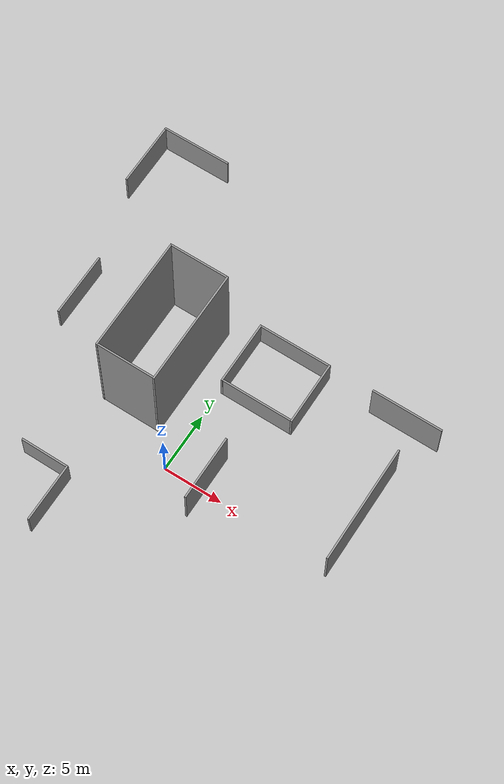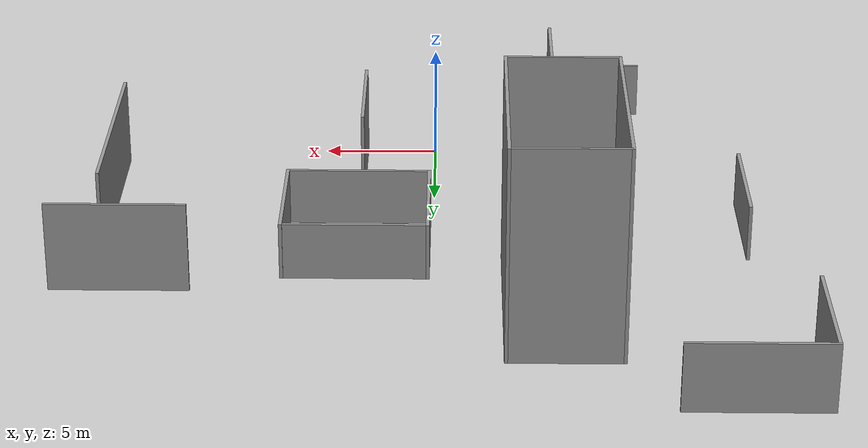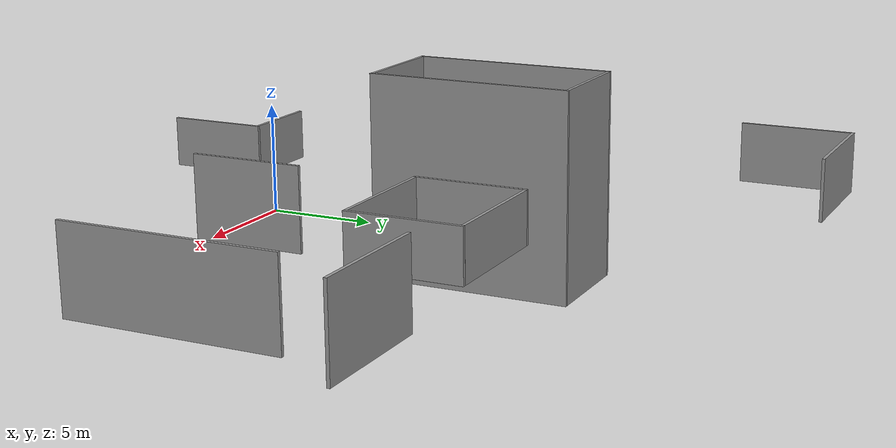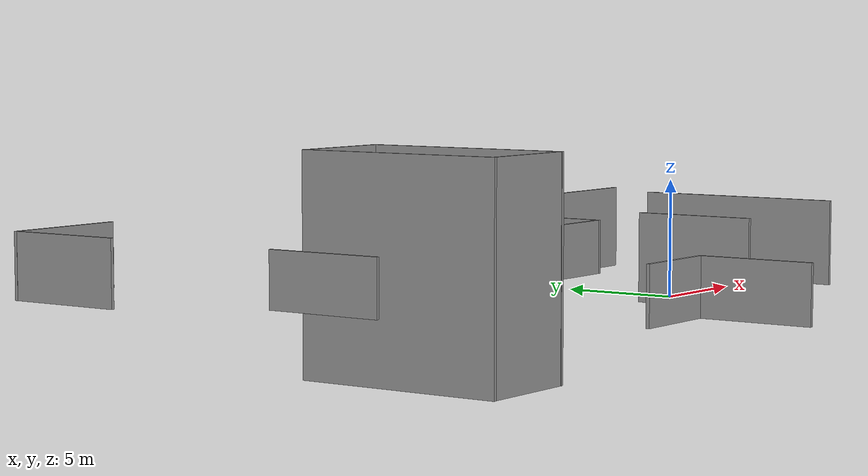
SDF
<?xml version='1.0'?>
<sdf version='1.7'>
  <model name='sideblock_maze'>
    <link name='Wall_2_clone_clone_2'>
      <pose>14.384 4.58003 0 0 -0 1.5708</pose>
      <self_collide>0</self_collide>
      <enable_wind>0</enable_wind>
      <kinematic>0</kinematic>
      <gravity>1</gravity>
      <inertial>
        <mass>1</mass>
        <pose>0 0 0 0 -0 0</pose>
        <inertia>
          <ixx>1</ixx>
          <ixy>0</ixy>
          <ixz>0</ixz>
          <iyy>1</iyy>
          <iyz>0</iyz>
          <izz>1</izz>
        </inertia>
      </inertial>
      <visual name='Wall_2_Visual'>
        <pose>0 0 1.25 0 -0 0</pose>
        <geometry>
          <box>
            <size>10 0.15 4</size>
          </box>
        </geometry>
        <material>
          <script>
            <uri>file://media/materials/scripts/gazebo.material</uri>
            <name>Gazebo/Grey</name>
          </script>
          <ambient>1 1 1 1</ambient>
          <shader type='pixel'>
            <normal_map>__default__</normal_map>
          </shader>
          <diffuse>0.7 0.7 0.7 1</diffuse>
          <specular>0.01 0.01 0.01 1</specular>
          <emissive>0 0 0 1</emissive>
        </material>
        <meta>
          <layer>0</layer>
        </meta>
        <transparency>0</transparency>
        <cast_shadows>1</cast_shadows>
      </visual>
    </link>
    <link name='Wall_2_clone_clone_2_clone'>
      <pose>3.25234 0.681077 0 0 -0 1.5708</pose>
      <self_collide>0</self_collide>
      <enable_wind>0</enable_wind>
      <kinematic>0</kinematic>
      <gravity>1</gravity>
      <inertial>
        <mass>1</mass>
        <pose>0 0 0 0 -0 0</pose>
        <inertia>
          <ixx>1</ixx>
          <ixy>0</ixy>
          <ixz>0</ixz>
          <iyy>1</iyy>
          <iyz>0</iyz>
          <izz>1</izz>
        </inertia>
      </inertial>
      <visual name='Wall_2_Visual'>
        <pose>0 0 1.25 0 -0 0</pose>
        <geometry>
          <box>
            <size>5.5 0.15 4</size>
          </box>
        </geometry>
        <material>
          <script>
            <uri>file://media/materials/scripts/gazebo.material</uri>
            <name>Gazebo/Grey</name>
          </script>
          <ambient>1 1 1 1</ambient>
          <shader type='pixel'>
            <normal_map>__default__</normal_map>
          </shader>
          <diffuse>0.7 0.7 0.7 1</diffuse>
          <specular>0.01 0.01 0.01 1</specular>
          <emissive>0 0 0 1</emissive>
        </material>
        <meta>
          <layer>0</layer>
        </meta>
        <transparency>0</transparency>
        <cast_shadows>1</cast_shadows>
      </visual>
    </link>
    <link name='Wall_2_clone_clone_2_clone_clone'>
      <pose>-3.12713 8.43683 0 0 -0 1.5708</pose>
      <self_collide>0</self_collide>
      <enable_wind>0</enable_wind>
      <kinematic>0</kinematic>
      <gravity>1</gravity>
      <inertial>
        <mass>1</mass>
        <pose>0 0 0 0 -0 0</pose>
        <inertia>
          <ixx>1</ixx>
          <ixy>0</ixy>
          <ixz>0</ixz>
          <iyy>1</iyy>
          <iyz>0</iyz>
          <izz>1</izz>
        </inertia>
      </inertial>
      <visual name='Wall_2_Visual'>
        <pose>0 0 1.25 0 -0 0</pose>
        <geometry>
          <box>
            <size>10 0.15 10</size>
          </box>
        </geometry>
        <material>
          <script>
            <uri>file://media/materials/scripts/gazebo.material</uri>
            <name>Gazebo/Grey</name>
          </script>
          <ambient>1 1 1 1</ambient>
          <shader type='pixel'>
            <normal_map>__default__</normal_map>
          </shader>
          <diffuse>0.7 0.7 0.7 1</diffuse>
          <specular>0.01 0.01 0.01 1</specular>
          <emissive>0 0 0 1</emissive>
        </material>
        <meta>
          <layer>0</layer>
        </meta>
        <transparency>0</transparency>
        <cast_shadows>1</cast_shadows>
      </visual>
    </link>
    <link name='Wall_2_clone_clone_2_clone_clone_1'>
      <pose>-13.4257 8.23962 0 0 -0 1.5708</pose>
      <self_collide>0</self_collide>
      <enable_wind>0</enable_wind>
      <kinematic>0</kinematic>
      <gravity>1</gravity>
      <inertial>
        <mass>1</mass>
        <pose>0 0 0 0 -0 0</pose>
        <inertia>
          <ixx>1</ixx>
          <ixy>0</ixy>
          <ixz>0</ixz>
          <iyy>1</iyy>
          <iyz>0</iyz>
          <izz>1</izz>
        </inertia>
      </inertial>
      <visual name='Wall_2_Visual'>
        <pose>0 0 1.25 0 -0 0</pose>
        <geometry>
          <box>
            <size>5.5 0.15 2.5</size>
          </box>
        </geometry>
        <material>
          <script>
            <uri>file://media/materials/scripts/gazebo.material</uri>
            <name>Gazebo/Grey</name>
          </script>
          <ambient>1 1 1 1</ambient>
          <shader type='pixel'>
            <normal_map>__default__</normal_map>
          </shader>
          <diffuse>0.7 0.7 0.7 1</diffuse>
          <specular>0.01 0.01 0.01 1</specular>
          <emissive>0 0 0 1</emissive>
        </material>
        <meta>
          <layer>0</layer>
        </meta>
        <transparency>0</transparency>
        <cast_shadows>1</cast_shadows>
      </visual>
    </link>
    <link name='Wall_2_clone_clone_2_clone_clone_12'>
      <pose>-5.54601 -7 0 0 -0 1.5708</pose>
      <self_collide>0</self_collide>
      <enable_wind>0</enable_wind>
      <kinematic>0</kinematic>
      <gravity>1</gravity>
      <inertial>
        <mass>1</mass>
        <pose>0 0 0 0 -0 0</pose>
        <inertia>
          <ixx>1</ixx>
          <ixy>0</ixy>
          <ixz>0</ixz>
          <iyy>1</iyy>
          <iyz>0</iyz>
          <izz>1</izz>
        </inertia>
      </inertial>
      <visual name='Wall_2_Visual'>
        <pose>0 0 1.25 0 -0 0</pose>
        <geometry>
          <box>
            <size>5 0.15 2.5</size>
          </box>
        </geometry>
        <material>
          <script>
            <uri>file://media/materials/scripts/gazebo.material</uri>
            <name>Gazebo/Grey</name>
          </script>
          <ambient>1 1 1 1</ambient>
          <shader type='pixel'>
            <normal_map>__default__</normal_map>
          </shader>
          <diffuse>0.7 0.7 0.7 1</diffuse>
          <specular>0.01 0.01 0.01 1</specular>
          <emissive>0 0 0 1</emissive>
        </material>
        <meta>
          <layer>0</layer>
        </meta>
        <transparency>0</transparency>
        <cast_shadows>1</cast_shadows>
      </visual>
    </link>
    <link name='Wall_2_clone_clone_2_clone_clone_2'>
      <pose>-15.5099 20.5306 0 0 -0 1.5708</pose>
      <self_collide>0</self_collide>
      <enable_wind>0</enable_wind>
      <kinematic>0</kinematic>
      <gravity>1</gravity>
      <inertial>
        <mass>1</mass>
        <pose>0 0 0 0 -0 0</pose>
        <inertia>
          <ixx>1</ixx>
          <ixy>0</ixy>
          <ixz>0</ixz>
          <iyy>1</iyy>
          <iyz>0</iyz>
          <izz>1</izz>
        </inertia>
      </inertial>
      <visual name='Wall_2_Visual'>
        <pose>0 0 1.25 0 -0 0</pose>
        <geometry>
          <box>
            <size>5.5 0.15 3</size>
          </box>
        </geometry>
        <material>
          <script>
            <uri>file://media/materials/scripts/gazebo.material</uri>
            <name>Gazebo/Grey</name>
          </script>
          <ambient>1 1 1 1</ambient>
          <shader type='pixel'>
            <normal_map>__default__</normal_map>
          </shader>
          <diffuse>0.7 0.7 0.7 1</diffuse>
          <specular>0.01 0.01 0.01 1</specular>
          <emissive>0 0 0 1</emissive>
        </material>
        <meta>
          <layer>0</layer>
        </meta>
        <transparency>0</transparency>
        <cast_shadows>1</cast_shadows>
      </visual>
    </link>
    <link name='Wall_2_clone_clone_2_clone_clone_5'>
      <pose>0.202585 10.1993 0 0 -0 1.5708</pose>
      <self_collide>0</self_collide>
      <enable_wind>0</enable_wind>
      <kinematic>0</kinematic>
      <gravity>1</gravity>
      <inertial>
        <mass>1</mass>
        <pose>0 0 0 0 -0 0</pose>
        <inertia>
          <ixx>1</ixx>
          <ixy>0</ixy>
          <ixz>0</ixz>
          <iyy>1</iyy>
          <iyz>0</iyz>
          <izz>1</izz>
        </inertia>
      </inertial>
      <visual name='Wall_2_Visual'>
        <pose>0 0 1.25 0 -0 0</pose>
        <geometry>
          <box>
            <size>5.5 0.15 2.5</size>
          </box>
        </geometry>
        <material>
          <script>
            <uri>file://media/materials/scripts/gazebo.material</uri>
            <name>Gazebo/Grey</name>
          </script>
          <ambient>1 1 1 1</ambient>
          <shader type='pixel'>
            <normal_map>__default__</normal_map>
          </shader>
          <diffuse>0.7 0.7 0.7 1</diffuse>
          <specular>0.01 0.01 0.01 1</specular>
          <emissive>0 0 0 1</emissive>
        </material>
        <meta>
          <layer>0</layer>
        </meta>
        <transparency>0</transparency>
        <cast_shadows>1</cast_shadows>
      </visual>
    </link>
    <link name='Wall_2_clone_clone_2_clone_clone_8'>
      <pose>6.35869 10.2066 0 0 -0 1.5708</pose>
      <self_collide>0</self_collide>
      <enable_wind>0</enable_wind>
      <kinematic>0</kinematic>
      <gravity>1</gravity>
      <inertial>
        <mass>1</mass>
        <pose>0 0 0 0 -0 0</pose>
        <inertia>
          <ixx>1</ixx>
          <ixy>0</ixy>
          <ixz>0</ixz>
          <iyy>1</iyy>
          <iyz>0</iyz>
          <izz>1</izz>
        </inertia>
      </inertial>
      <visual name='Wall_2_Visual'>
        <pose>0 0 1.25 0 -0 0</pose>
        <geometry>
          <box>
            <size>5.5 0.15 2.5</size>
          </box>
        </geometry>
        <material>
          <script>
            <uri>file://media/materials/scripts/gazebo.material</uri>
            <name>Gazebo/Grey</name>
          </script>
          <ambient>1 1 1 1</ambient>
          <shader type='pixel'>
            <normal_map>__default__</normal_map>
          </shader>
          <diffuse>0.7 0.7 0.7 1</diffuse>
          <specular>0.01 0.01 0.01 1</specular>
          <emissive>0 0 0 1</emissive>
        </material>
        <meta>
          <layer>0</layer>
        </meta>
        <transparency>0</transparency>
        <cast_shadows>1</cast_shadows>
      </visual>
    </link>
    <link name='Wall_2_clone_clone_2_clone_clone_clone'>
      <pose>-8.2037 8.43683 0 0 -0 1.5708</pose>
      <self_collide>0</self_collide>
      <enable_wind>0</enable_wind>
      <kinematic>0</kinematic>
      <gravity>1</gravity>
      <inertial>
        <mass>1</mass>
        <pose>0 0 0 0 -0 0</pose>
        <inertia>
          <ixx>1</ixx>
          <ixy>0</ixy>
          <ixz>0</ixz>
          <iyy>1</iyy>
          <iyz>0</iyz>
          <izz>1</izz>
        </inertia>
      </inertial>
      <visual name='Wall_2_Visual'>
        <pose>0 0 1.25 0 -0 0</pose>
        <geometry>
          <box>
            <size>10 0.15 10</size>
          </box>
        </geometry>
        <material>
          <script>
            <uri>file://media/materials/scripts/gazebo.material</uri>
            <name>Gazebo/Grey</name>
          </script>
          <ambient>1 1 1 1</ambient>
          <shader type='pixel'>
            <normal_map>__default__</normal_map>
          </shader>
          <diffuse>0.7 0.7 0.7 1</diffuse>
          <specular>0.01 0.01 0.01 1</specular>
          <emissive>0 0 0 1</emissive>
        </material>
        <meta>
          <layer>0</layer>
        </meta>
        <transparency>0</transparency>
        <cast_shadows>1</cast_shadows>
      </visual>
    </link>
    <link name='Wall_8_clone_clone'>
      <pose>13.2706 12.6341 0 0 -0 3.14159</pose>
      <self_collide>0</self_collide>
      <enable_wind>0</enable_wind>
      <kinematic>0</kinematic>
      <gravity>1</gravity>
      <inertial>
        <mass>1</mass>
        <pose>0 0 0 0 -0 0</pose>
        <inertia>
          <ixx>1</ixx>
          <ixy>0</ixy>
          <ixz>0</ixz>
          <iyy>1</iyy>
          <iyz>0</iyz>
          <izz>1</izz>
        </inertia>
      </inertial>
      <visual name='Wall_8_Visual'>
        <pose>0 0 1.25 0 -0 0</pose>
        <geometry>
          <box>
            <size>6 0.15 4</size>
          </box>
        </geometry>
        <material>
          <script>
            <uri>file://media/materials/scripts/gazebo.material</uri>
            <name>Gazebo/Grey</name>
          </script>
          <ambient>1 1 1 1</ambient>
          <shader type='pixel'>
            <normal_map>__default__</normal_map>
          </shader>
          <diffuse>0.7 0.7 0.7 1</diffuse>
          <specular>0.01 0.01 0.01 1</specular>
          <emissive>0 0 0 1</emissive>
        </material>
        <meta>
          <layer>0</layer>
        </meta>
        <transparency>0</transparency>
        <cast_shadows>1</cast_shadows>
      </visual>
    </link>
    <link name='Wall_8_clone_clone_0'>
      <pose>3.2822 12.882 0 0 -0 3.14159</pose>
      <self_collide>0</self_collide>
      <enable_wind>0</enable_wind>
      <kinematic>0</kinematic>
      <gravity>1</gravity>
      <inertial>
        <mass>1</mass>
        <pose>0 0 0 0 -0 0</pose>
        <inertia>
          <ixx>1</ixx>
          <ixy>0</ixy>
          <ixz>0</ixz>
          <iyy>1</iyy>
          <iyz>0</iyz>
          <izz>1</izz>
        </inertia>
      </inertial>
      <visual name='Wall_8_Visual'>
        <pose>0 0 1.25 0 -0 0</pose>
        <geometry>
          <box>
            <size>6 0.15 2.5</size>
          </box>
        </geometry>
        <material>
          <script>
            <uri>file://media/materials/scripts/gazebo.material</uri>
            <name>Gazebo/Grey</name>
          </script>
          <ambient>1 1 1 1</ambient>
          <shader type='pixel'>
            <normal_map>__default__</normal_map>
          </shader>
          <diffuse>0.7 0.7 0.7 1</diffuse>
          <specular>0.01 0.01 0.01 1</specular>
          <emissive>0 0 0 1</emissive>
        </material>
        <meta>
          <layer>0</layer>
        </meta>
        <transparency>0</transparency>
        <cast_shadows>1</cast_shadows>
      </visual>
    </link>
    <link name='Wall_8_clone_clone_1'>
      <pose>-12.5896 23.3464 0 0 -0 3.14159</pose>
      <self_collide>0</self_collide>
      <enable_wind>0</enable_wind>
      <kinematic>0</kinematic>
      <gravity>1</gravity>
      <inertial>
        <mass>1</mass>
        <pose>0 0 0 0 -0 0</pose>
        <inertia>
          <ixx>1</ixx>
          <ixy>0</ixy>
          <ixz>0</ixz>
          <iyy>1</iyy>
          <iyz>0</iyz>
          <izz>1</izz>
        </inertia>
      </inertial>
      <visual name='Wall_8_Visual'>
        <pose>0 0 1.25 0 -0 0</pose>
        <geometry>
          <box>
            <size>6 0.15 3</size>
          </box>
        </geometry>
        <material>
          <script>
            <uri>file://media/materials/scripts/gazebo.material</uri>
            <name>Gazebo/Grey</name>
          </script>
          <ambient>1 1 1 1</ambient>
          <shader type='pixel'>
            <normal_map>__default__</normal_map>
          </shader>
          <diffuse>0.7 0.7 0.7 1</diffuse>
          <specular>0.01 0.01 0.01 1</specular>
          <emissive>0 0 0 1</emissive>
        </material>
        <meta>
          <layer>0</layer>
        </meta>
        <transparency>0</transparency>
        <cast_shadows>1</cast_shadows>
      </visual>
    </link>
    <link name='Wall_8_clone_clone_10'>
      <pose>3.2837 7.52752 0 0 -0 3.14159</pose>
      <self_collide>0</self_collide>
      <enable_wind>0</enable_wind>
      <kinematic>0</kinematic>
      <gravity>1</gravity>
      <inertial>
        <mass>1</mass>
        <pose>0 0 0 0 -0 0</pose>
        <inertia>
          <ixx>1</ixx>
          <ixy>0</ixy>
          <ixz>0</ixz>
          <iyy>1</iyy>
          <iyz>0</iyz>
          <izz>1</izz>
        </inertia>
      </inertial>
      <visual name='Wall_8_Visual'>
        <pose>0 0 1.25 0 -0 0</pose>
        <geometry>
          <box>
            <size>6 0.15 2.5</size>
          </box>
        </geometry>
        <material>
          <script>
            <uri>file://media/materials/scripts/gazebo.material</uri>
            <name>Gazebo/Grey</name>
          </script>
          <ambient>1 1 1 1</ambient>
          <shader type='pixel'>
            <normal_map>__default__</normal_map>
          </shader>
          <diffuse>0.7 0.7 0.7 1</diffuse>
          <specular>0.01 0.01 0.01 1</specular>
          <emissive>0 0 0 1</emissive>
        </material>
        <meta>
          <layer>0</layer>
        </meta>
        <transparency>0</transparency>
        <cast_shadows>1</cast_shadows>
      </visual>
    </link>
    <link name='Wall_8_clone_clone_4'>
      <pose>-7.61424 -4.57818 0 0 0 -3.14159</pose>
      <self_collide>0</self_collide>
      <enable_wind>0</enable_wind>
      <kinematic>0</kinematic>
      <gravity>1</gravity>
      <inertial>
        <mass>1</mass>
        <pose>0 0 0 0 -0 0</pose>
        <inertia>
          <ixx>1</ixx>
          <ixy>0</ixy>
          <ixz>0</ixz>
          <iyy>1</iyy>
          <iyz>0</iyz>
          <izz>1</izz>
        </inertia>
      </inertial>
      <visual name='Wall_8_Visual'>
        <pose>0 0 1.25 0 -0 0</pose>
        <geometry>
          <box>
            <size>4 0.15 2.5</size>
          </box>
        </geometry>
        <material>
          <script>
            <uri>file://media/materials/scripts/gazebo.material</uri>
            <name>Gazebo/Grey</name>
          </script>
          <ambient>1 1 1 1</ambient>
          <shader type='pixel'>
            <normal_map>__default__</normal_map>
          </shader>
          <diffuse>0.7 0.7 0.7 1</diffuse>
          <specular>0.01 0.01 0.01 1</specular>
          <emissive>0 0 0 1</emissive>
        </material>
        <meta>
          <layer>0</layer>
        </meta>
        <transparency>0</transparency>
        <cast_shadows>1</cast_shadows>
      </visual>
    </link>
    <link name='Wall_8_clone_clone_8'>
      <pose>-5.69817 13.3613 0 0 -0 3.14159</pose>
      <self_collide>0</self_collide>
      <enable_wind>0</enable_wind>
      <kinematic>0</kinematic>
      <gravity>1</gravity>
      <inertial>
        <mass>1</mass>
        <pose>0 0 0 0 -0 0</pose>
        <inertia>
          <ixx>1</ixx>
          <ixy>0</ixy>
          <ixz>0</ixz>
          <iyy>1</iyy>
          <iyz>0</iyz>
          <izz>1</izz>
        </inertia>
      </inertial>
      <visual name='Wall_8_Visual'>
        <pose>0 0 1.25 0 -0 0</pose>
        <geometry>
          <box>
            <size>5 0.15 10</size>
          </box>
        </geometry>
        <material>
          <script>
            <uri>file://media/materials/scripts/gazebo.material</uri>
            <name>Gazebo/Grey</name>
          </script>
          <ambient>1 1 1 1</ambient>
          <shader type='pixel'>
            <normal_map>__default__</normal_map>
          </shader>
          <diffuse>0.7 0.7 0.7 1</diffuse>
          <specular>0.01 0.01 0.01 1</specular>
          <emissive>0 0 0 1</emissive>
        </material>
        <meta>
          <layer>0</layer>
        </meta>
        <transparency>0</transparency>
        <cast_shadows>1</cast_shadows>
      </visual>
    </link>
    <link name='Wall_8_clone_clone_8_clone'>
      <pose>-5.67917 3.52925 0 0 -0 3.14159</pose>
      <self_collide>0</self_collide>
      <enable_wind>0</enable_wind>
      <kinematic>0</kinematic>
      <gravity>1</gravity>
      <inertial>
        <mass>1</mass>
        <pose>0 0 0 0 -0 0</pose>
        <inertia>
          <ixx>1</ixx>
          <ixy>0</ixy>
          <ixz>0</ixz>
          <iyy>1</iyy>
          <iyz>0</iyz>
          <izz>1</izz>
        </inertia>
      </inertial>
      <visual name='Wall_8_Visual'>
        <pose>0 0 1.25 0 -0 0</pose>
        <geometry>
          <box>
            <size>5 0.15 10</size>
          </box>
        </geometry>
        <material>
          <script>
            <uri>file://media/materials/scripts/gazebo.material</uri>
            <name>Gazebo/Grey</name>
          </script>
          <ambient>1 1 1 1</ambient>
          <shader type='pixel'>
            <normal_map>__default__</normal_map>
          </shader>
          <diffuse>0.7 0.7 0.7 1</diffuse>
          <specular>0.01 0.01 0.01 1</specular>
          <emissive>0 0 0 1</emissive>
        </material>
        <meta>
          <layer>0</layer>
        </meta>
        <transparency>0</transparency>
        <cast_shadows>1</cast_shadows>
      </visual>
    </link>
    <static>1</static>
    <allow_auto_disable>1</allow_auto_disable>
  </model>
</sdf>
